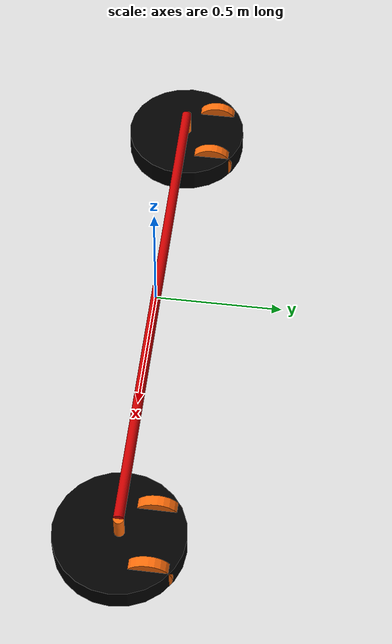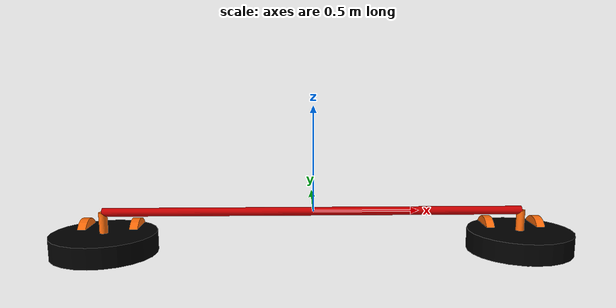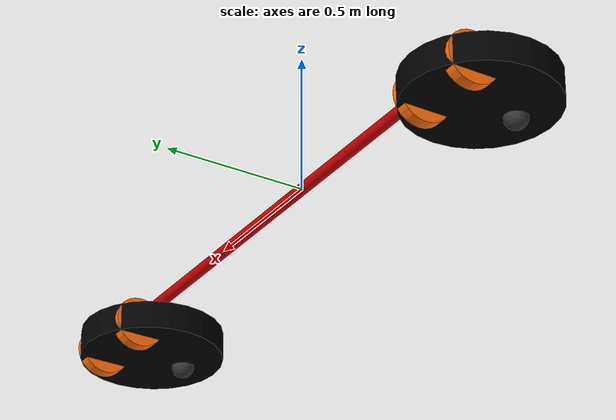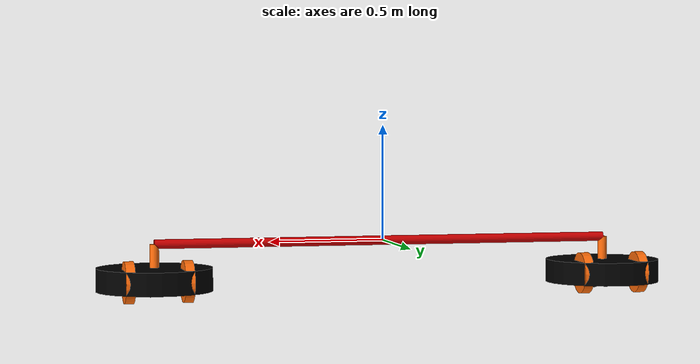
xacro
<?xml version="1.0" ?>
<!-- This model started from link_log -->

<robot name="two_loggers" xmlns:xacro="https://www.ros.org/wiki/xacro" >

  <!-- Constants for robot dimensions -->
  <xacro:property name="PI" value="3.1415926535897931"/>
  <!-- properties of joint damping* -->
  <xacro:property name="DAMP" value="0.9"/>
  <!-- properties of link_log -->
  <xacro:property name="R_LOG" value="0.02"/>
  <xacro:property name="L_LOG" value="2"/>
  <xacro:property name="M_LOG" value="0.04"/>
  <!-- properties of link_hat* -->
  <xacro:property name="R_HAT" value="0.02"/>
  <xacro:property name="L_HAT" value="0.1"/>
  <xacro:property name="M_HAT" value="0.5"/>
  <!-- properties of link_chassis* -->
  <xacro:property name="R_CHASSIS" value="0.25"/>
  <xacro:property name="L_CHASSIS" value="0.1"/>
  <xacro:property name="M_CHASSIS" value="2"/>
  <!-- properties of link_caster* -->
  <xacro:property name="R_CASTER" value="0.04"/>
  <xacro:property name="M_CASTER" value="0.1"/>
  <!-- properties of link_wheel* -->
  <xacro:property name="R_WHEEL" value="0.09"/>
  <xacro:property name="L_WHEEL" value="0.04"/>
  <xacro:property name="M_WHEEL" value="0.5"/>

  <!-- Import all Gazebo-customization elements, including Gazebo colors -->
  <xacro:include filename="$(find loggers_description)/urdf/two_loggers.gazebo" />
  <!-- Import Rviz colors -->
  <xacro:include filename="$(find loggers_description)/urdf/materials.xacro" />

  <!-- Use a dummy link, or Gazebo would not take care of root link's inertia -->
  <link name="world"/>

  <joint name="joint_world_log" type="floating">
    <parent link="world"/>
    <child link="link_log"/>
  </joint>

  <link name="link_log">
    <visual>
      <origin rpy="0 ${PI/2} 0" xyz="0 0 0"/>
      <geometry>
        <cylinder length="${L_LOG}" radius="${R_LOG}"/>
      </geometry>
      <material name="red"/>
    </visual>
    <collision>
      <origin rpy="0 ${PI/2} 0" xyz="0 0 0"/>
      <geometry>
        <cylinder length="${L_LOG}" radius="${R_LOG}"/>
      </geometry>
    </collision>
    <inertial>
      <mass value="${M_LOG}"/>
      <origin rpy="0 ${PI/2} 0" xyz="0 0 0"/>
      <inertia ixx="${1/12*M_LOG*(3*R_LOG*R_LOG+L_LOG*L_LOG)}" ixy="0" ixz="0" iyy="${1/12*M_LOG*(3*R_LOG*R_LOG+L_LOG*L_LOG)}" iyz="0" izz="${1/2*M_LOG*R_LOG*R_LOG}"/>
    </inertial>
  </link>

  <joint name="joint_log_hat0" type="revolute">
    <origin rpy="0 0 0" xyz="${-L_LOG/2} 0 0"/>
    <parent link="link_log"/>
    <child link="link_hat_0"/>
    <axis rpy="0 0 0" xyz="0 0 1"/>
    <limit effort="0" lower="0" upper="0" velocity="0"/>
    <dynamics damping="0.2"/>
  </joint>

  <link name="link_hat_0">
    <visual>
      <origin rpy="0 0 0" xyz="0 0 ${-L_HAT/2}"/>
      <geometry>
        <cylinder length="${L_HAT}" radius="${R_HAT}"/>
      </geometry>
      <material name="orange"/>
    </visual>
    <collision>
      <origin rpy="0 0 0" xyz="0 0 ${-L_HAT/2}"/>
      <geometry>
        <cylinder length="${L_HAT}" radius="${R_HAT}"/>
      </geometry>
    </collision>
    <inertial>
      <mass value="${M_HAT}"/>
      <origin rpy="0 0 0" xyz="0 0 ${-L_HAT/2}"/>
      <inertia ixx="${1/12*M_HAT*(3*R_HAT*R_HAT+L_HAT*L_HAT)}" ixy="0" ixz="0" iyy="${1/12*M_HAT*(3*R_HAT*R_HAT+L_HAT*L_HAT)}" iyz="0" izz="${1/2*M_HAT*R_HAT*R_HAT}"/>
    </inertial>
  </link>

  <joint name="joint_hat0_chassis0" type="continuous">
    <origin rpy="0 0 0" xyz="0.0 0 ${-L_HAT-L_CHASSIS/2}"/>
    <parent link="link_hat_0"/>
    <child link="link_chassis_0" />
    <axis rpy="0 0 0" xyz="0 0 1"/>
    <dynamics damping="0.2"/>
  </joint>

  <link name="link_chassis_0">
    <visual>
      <origin rpy="0 0 0" xyz="0 0 0"/>
      <geometry>
        <cylinder length="${L_CHASSIS}" radius="${R_CHASSIS}"/>
      </geometry>
      <material name="black"/>
    </visual>
    <collision>
      <origin rpy="0 0 0" xyz="0 0 0"/>
      <geometry>
        <cylinder length="${L_CHASSIS}" radius="${R_CHASSIS}"/>
      </geometry>
    </collision>
    <inertial>
      <mass value="2"/>
      <origin rpy="0 0 0" xyz="0 0 0"/>
      <inertia ixx="${1/12*M_CHASSIS*(3*R_CHASSIS*R_CHASSIS+L_CHASSIS*L_CHASSIS)}" ixy="0" ixz="0" iyy="${1/12*M_CHASSIS*(3*R_CHASSIS*R_CHASSIS+L_CHASSIS*L_CHASSIS)}" iyz="0" izz="${1/2*M_CHASSIS*R_CHASSIS*R_CHASSIS}"/>
    </inertial>
  </link>

  <joint name="joint_chassis0_caster0" type="fixed">
    <origin rpy="0 0 0" xyz="0 ${-R_CHASSIS/2} ${-L_CHASSIS/2}"/>
    <parent link="link_chassis_0"/>
    <child link="link_caster_0"/>
  </joint>

  <link name="link_caster_0">
    <visual>
      <origin rpy="0 0 0" xyz="0 0 0"/>
      <geometry>
        <sphere radius="${R_CASTER}"/>
      </geometry>
      <material name="grey"/>
    </visual>
    <collision>
      <origin rpy=" 0 0 0" xyz="0 0 0"/>
      <geometry>
        <sphere radius="${R_CASTER}"/>
      </geometry>
    </collision>
    <inertial>
      <mass value="${M_CASTER}"/>
      <origin rpy="0 0 0" xyz="0 0 0"/>
      <inertia ixx="${2/5*M_CASTER*R_CASTER*R_CASTER}" ixy="0" ixz="0" iyy="${2/5*M_CASTER*R_CASTER*R_CASTER}" iyz="0" izz="${2/5*M_CASTER*R_CASTER*R_CASTER}"/>
    </inertial>
  </link>

  <joint name="joint_chassis0_lwheel0" type="continuous">
    <origin rpy="0 0 0" xyz="${R_CHASSIS/2} ${R_CHASSIS/2} 0"/>
    <parent link="link_chassis_0"/>
    <child link="link_left_wheel_0" />
    <axis rpy="0 0 0" xyz="1 0 0"/>
  </joint>

  <link name="link_left_wheel_0">
    <visual>
      <origin rpy="0 ${PI/2} 0" xyz="0 0 0"/>
      <geometry>
        <cylinder length="${L_WHEEL}" radius="${R_WHEEL}"/>
      </geometry>
      <material name="orange"/>
    </visual>
    <collision>
      <origin rpy="0 ${PI/2} 0" xyz="0 0 0" />
      <geometry>
        <cylinder length="${L_WHEEL}" radius="${R_WHEEL}"/>
      </geometry>
    </collision>
    <inertial>
      <mass value="${M_WHEEL}"/>
      <origin rpy="0 ${PI/2} 0" xyz="0 0 0"/>
      <inertia ixx="${1/12*M_WHEEL*(3*R_WHEEL*R_WHEEL+L_WHEEL*L_WHEEL)}" ixy="0" ixz="0" iyy="${1/12*M_WHEEL*(3*R_WHEEL*R_WHEEL+L_WHEEL*L_WHEEL)}" iyz="0" izz="${1/2*M_WHEEL*R_WHEEL*R_WHEEL}"/>
    </inertial>
  </link>

  <joint name="joint_chassis0_rwheel0" type="continuous">
    <origin rpy="0 0 0" xyz="${-R_CHASSIS/2} ${R_CHASSIS/2} 0"/>
    <child link="link_right_wheel_0" />
    <parent link="link_chassis_0"/>
    <axis rpy="0 0 0" xyz="1 0 0"/>
  </joint>

  <link name="link_right_wheel_0">
    <collision>
      <origin rpy="0 ${PI/2} 0" xyz="0 0 0" />
      <geometry>
        <cylinder length="${L_WHEEL}" radius="${R_WHEEL}"/>
      </geometry>
    </collision>
    <visual>
      <origin rpy="0 ${PI/2} 0" xyz="0 0 0"/>
      <geometry>
        <cylinder length="${L_WHEEL}" radius="${R_WHEEL}"/>
      </geometry>
      <material name="orange"/>
    </visual>
    <inertial>
      <mass value="${M_WHEEL}"/>
      <origin rpy="0 ${PI/2} 0" xyz="0 0 0"/>
      <inertia ixx="${1/12*M_WHEEL*(3*R_WHEEL*R_WHEEL+L_WHEEL*L_WHEEL)}" ixy="0" ixz="0" iyy="${1/12*M_WHEEL*(3*R_WHEEL*R_WHEEL+L_WHEEL*L_WHEEL)}" iyz="0" izz="${1/2*M_WHEEL*R_WHEEL*R_WHEEL}"/>
    </inertial>
  </link>

  <joint name="joint_log_hat1" type="revolute">
    <origin rpy="0 0 0" xyz="${L_LOG/2} 0 0"/>
    <parent link="link_log"/>
    <child link="link_hat_1"/>
    <axis rpy="0 0 0" xyz="0 0 1"/>
    <limit effort="0" lower="0" upper="0" velocity="0"/>
    <dynamics damping="0.2"/>
  </joint>

  <link name="link_hat_1">
    <visual>
      <origin rpy="0 0 0" xyz="0 0 ${-L_HAT/2}"/>
      <geometry>
        <cylinder length="${L_HAT}" radius="${R_HAT}"/>
      </geometry>
      <material name="orange"/>
    </visual>
    <collision>
      <origin rpy="0 0 0" xyz="0 0 ${-L_HAT/2}"/>
      <geometry>
        <cylinder length="${L_HAT}" radius="${R_HAT}"/>
      </geometry>
    </collision>
    <inertial>
      <mass value="${M_HAT}"/>
      <origin rpy="0 0 0" xyz="0 0 ${-L_HAT/2}"/>
      <inertia ixx="${1/12*M_HAT*(3*R_HAT*R_HAT+L_HAT*L_HAT)}" ixy="0" ixz="0" iyy="${1/12*M_HAT*(3*R_HAT*R_HAT+L_HAT*L_HAT)}" iyz="0" izz="${1/2*M_HAT*R_HAT*R_HAT}"/>
    </inertial>
  </link>

  <joint name="joint_hat1_chassis1" type="continuous">
    <origin rpy="0 0 0" xyz="0.0 0 ${-L_HAT-L_CHASSIS/2}"/>
    <parent link="link_hat_1"/>
    <child link="link_chassis_1" />
    <axis rpy="0 0 0" xyz="0 0 1"/>
    <dynamics damping="0.2"/>
  </joint>

  <link name="link_chassis_1">
    <visual>
      <origin rpy="0 0 0" xyz="0 0 0"/>
      <geometry>
        <cylinder length="${L_CHASSIS}" radius="${R_CHASSIS}"/>
      </geometry>
      <material name="black"/>
    </visual>
    <collision>
      <origin rpy="0 0 0" xyz="0 0 0"/>
      <geometry>
        <cylinder length="${L_CHASSIS}" radius="${R_CHASSIS}"/>
      </geometry>
    </collision>
    <inertial>
      <mass value="2"/>
      <origin rpy="0 0 0" xyz="0 0 0"/>
      <inertia ixx="${1/12*M_CHASSIS*(3*R_CHASSIS*R_CHASSIS+L_CHASSIS*L_CHASSIS)}" ixy="0" ixz="0" iyy="${1/12*M_CHASSIS*(3*R_CHASSIS*R_CHASSIS+L_CHASSIS*L_CHASSIS)}" iyz="0" izz="${1/2*M_CHASSIS*R_CHASSIS*R_CHASSIS}"/>
    </inertial>
  </link>

  <joint name="joint_chassis1_caster1" type="fixed">
    <origin rpy="0 0 0" xyz="0 ${-R_CHASSIS/2} ${-L_CHASSIS/2}"/>
    <parent link="link_chassis_1"/>
    <child link="link_caster_1"/>

  </joint>

  <link name="link_caster_1">
    <visual>
      <origin rpy="0 0 0" xyz="0 0 0"/>
      <geometry>
        <sphere radius="${R_CASTER}"/>
      </geometry>
      <material name="grey"/>
    </visual>
    <collision>
      <origin rpy=" 0 0 0" xyz="0 0 0"/>
      <geometry>
        <sphere radius="${R_CASTER}"/>
      </geometry>
    </collision>
    <inertial>
      <mass value="${M_CASTER}"/>
      <origin rpy="0 0 0" xyz="0 0 0"/>
      <inertia ixx="${2/5*M_CASTER*R_CASTER*R_CASTER}" ixy="0" ixz="0" iyy="${2/5*M_CASTER*R_CASTER*R_CASTER}" iyz="0" izz="${2/5*M_CASTER*R_CASTER*R_CASTER}"/>
    </inertial>
  </link>

  <joint name="joint_chassis1_lwheel1" type="continuous">
    <origin rpy="0 0 0" xyz="${R_CHASSIS/2} ${R_CHASSIS/2} 0"/>
    <parent link="link_chassis_1"/>
    <child link="link_left_wheel_1" />
    <axis rpy="0 0 0" xyz="1 0 0"/>

  </joint>

  <link name="link_left_wheel_1">
    <visual>
      <origin rpy="0 ${PI/2} 0" xyz="0 0 0"/>
      <geometry>
        <cylinder length="${L_WHEEL}" radius="${R_WHEEL}"/>
      </geometry>
      <material name="orange"/>
    </visual>
    <collision>
      <origin rpy="0 ${PI/2} 0" xyz="0 0 0" />
      <geometry>
        <cylinder length="${L_WHEEL}" radius="${R_WHEEL}"/>
      </geometry>
    </collision>
    <inertial>
      <mass value="${M_WHEEL}"/>
      <origin rpy="0 ${PI/2} 0" xyz="0 0 0"/>
      <inertia ixx="${1/12*M_WHEEL*(3*R_WHEEL*R_WHEEL+L_WHEEL*L_WHEEL)}" ixy="0" ixz="0" iyy="${1/12*M_WHEEL*(3*R_WHEEL*R_WHEEL+L_WHEEL*L_WHEEL)}" iyz="0" izz="${1/2*M_WHEEL*R_WHEEL*R_WHEEL}"/>
    </inertial>
  </link>

  <joint name="joint_chassis1_rwheel1" type="continuous">
    <origin rpy="0 0 0" xyz="${-R_CHASSIS/2} ${R_CHASSIS/2} 0"/>
    <child link="link_right_wheel_1" />
    <parent link="link_chassis_1"/>
    <axis rpy="0 0 0" xyz="1 0 0"/>

  </joint>

  <link name="link_right_wheel_1">
    <collision>
      <origin rpy="0 ${PI/2} 0" xyz="0 0 0" />
      <geometry>
        <cylinder length="${L_WHEEL}" radius="${R_WHEEL}"/>
      </geometry>
    </collision>
    <visual>
      <origin rpy="0 ${PI/2} 0" xyz="0 0 0"/>
      <geometry>
        <cylinder length="${L_WHEEL}" radius="${R_WHEEL}"/>
      </geometry>
      <material name="orange"/>
    </visual>
    <inertial>
      <mass value="${M_WHEEL}"/>
      <origin rpy="0 ${PI/2} 0" xyz="0 0 0"/>
      <inertia ixx="${1/12*M_WHEEL*(3*R_WHEEL*R_WHEEL+L_WHEEL*L_WHEEL)}" ixy="0" ixz="0" iyy="${1/12*M_WHEEL*(3*R_WHEEL*R_WHEEL+L_WHEEL*L_WHEEL)}" iyz="0" izz="${1/2*M_WHEEL*R_WHEEL*R_WHEEL}"/>
    </inertial>
  </link>

</robot>

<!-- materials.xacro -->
<robot>

  <material name="black">
    <color rgba="0.0 0.0 0.0 1.0"/>
  </material>

  <material name="blue">
    <color rgba="0.0 0.0 0.8 1.0"/>
  </material>

  <material name="green">
    <color rgba="0.0 0.8 0.0 1.0"/>
  </material>

  <material name="grey">
    <color rgba="0.2 0.2 0.2 1.0"/>
  </material>

  <material name="orange">
    <color rgba="${255/255} ${108/255} ${10/255} 1.0"/>
  </material>

  <material name="brown">
    <color rgba="${222/255} ${207/255} ${195/255} 1.0"/>
  </material>

  <material name="red">
    <color rgba="0.8 0.0 0.0 1.0"/>
  </material>

  <material name="white">
    <color rgba="1.0 1.0 1.0 1.0"/>
  </material>

  <material name="uc_red">
    <color rgba="${224/255} ${1/255} ${34/255} 1.0"/>
  </material>

</robot>
